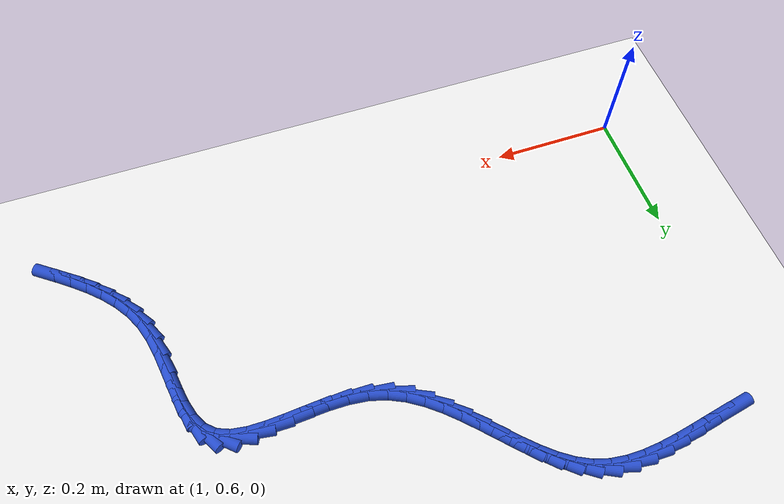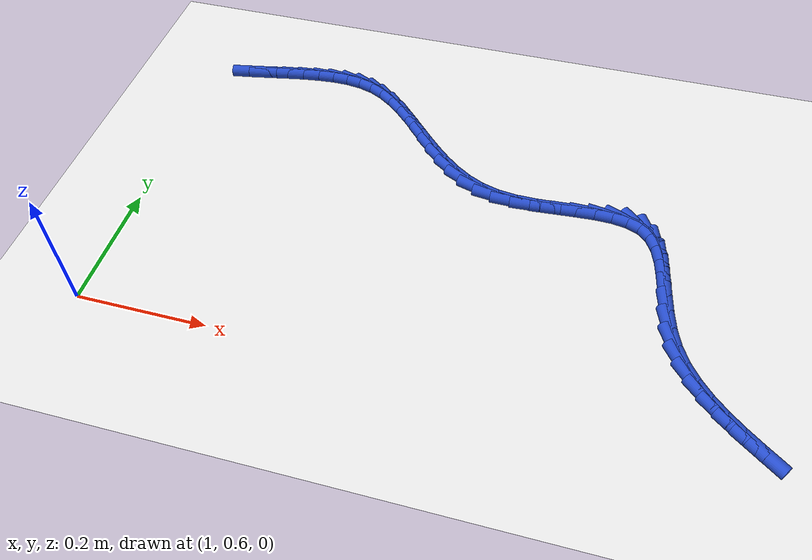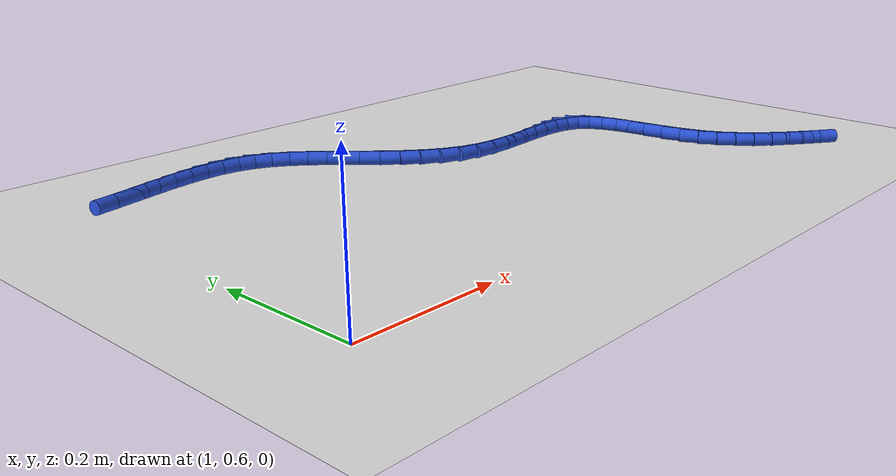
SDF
<sdf version="1.6">
 <world name="default">
  <model name="ground_plane">
   <static>1</static>
   <link name="link">
    <collision name="collision">
     <geometry><plane><normal>0 0 1</normal><size>100 100</size></plane></geometry>
     <surface><friction><ode><mu>100</mu><mu2>50</mu2></ode></friction></surface>
    </collision>
    <visual name="visual">
     <cast_shadows>0</cast_shadows>
     <geometry><plane><normal>0 0 1</normal><size>100 100</size></plane></geometry>
     <material>
      <script><uri>file://media/materials/scripts/gazebo.material</uri><name>Gazebo/WhiteGlow</name></script>
     </material>
    </visual>
   </link>
  </model>
  <model name="line">
   <link name="link_62">
    <pose>1.0673992737470597 1.1297134181565205 0.01 0 1.57 0.18237751880735595</pose>
    <collision name="collision">
     <geometry><cylinder><radius>0.01</radius><length>0.08</length></cylinder></geometry>
    </collision>
    <visual name="visual">
     <material>
      <script><name>Gazebo/Blue</name><uri>file://media/materials/scripts/gazebo.material</uri></script>
     </material>
     <geometry><cylinder><radius>0.01</radius><length>0.08</length></cylinder></geometry>
    </visual>
   </link>
   <link name="link_63">
    <pose>1.0968091401583424 1.1351373869472416 0.01 0 1.57 0.18851819379441911</pose>
    <collision name="collision">
     <geometry><cylinder><radius>0.01</radius><length>0.08</length></cylinder></geometry>
    </collision>
    <visual name="visual">
     <material>
      <script><name>Gazebo/Blue</name><uri>file://media/materials/scripts/gazebo.material</uri></script>
     </material>
     <geometry><cylinder><radius>0.01</radius><length>0.08</length></cylinder></geometry>
    </visual>
   </link>
   <link name="link_64">
    <pose>1.1260292529229787 1.1407121070224222 0.01 0 1.57 0.1741711699503826</pose>
    <collision name="collision">
     <geometry><cylinder><radius>0.01</radius><length>0.08</length></cylinder></geometry>
    </collision>
    <visual name="visual">
     <material>
      <script><name>Gazebo/Blue</name><uri>file://media/materials/scripts/gazebo.material</uri></script>
     </material>
     <geometry><cylinder><radius>0.01</radius><length>0.08</length></cylinder></geometry>
    </visual>
   </link>
   <link name="link_65">
    <pose>1.1548620190743997 1.1457853476105395 0.01 0 1.57 0.13787477575876508</pose>
    <collision name="collision">
     <geometry><cylinder><radius>0.01</radius><length>0.08</length></cylinder></geometry>
    </collision>
    <visual name="visual">
     <material>
      <script><name>Gazebo/Blue</name><uri>file://media/materials/scripts/gazebo.material</uri></script>
     </material>
     <geometry><cylinder><radius>0.01</radius><length>0.08</length></cylinder></geometry>
    </visual>
   </link>
   <link name="link_66">
    <pose>1.1831098456460356 1.1497048779400687 0.01 0 1.57 0.07680353953465939</pose>
    <collision name="collision">
     <geometry><cylinder><radius>0.01</radius><length>0.08</length></cylinder></geometry>
    </collision>
    <visual name="visual">
     <material>
      <script><name>Gazebo/Blue</name><uri>file://media/materials/scripts/gazebo.material</uri></script>
     </material>
     <geometry><cylinder><radius>0.01</radius><length>0.08</length></cylinder></geometry>
    </visual>
   </link>
   <link name="link_67">
    <pose>1.210575139671318 1.151818467239486 0.01 0 1.57 -0.013009660916273081</pose>
    <collision name="collision">
     <geometry><cylinder><radius>0.01</radius><length>0.08</length></cylinder></geometry>
    </collision>
    <visual name="visual">
     <material>
      <script><name>Gazebo/Blue</name><uri>file://media/materials/scripts/gazebo.material</uri></script>
     </material>
     <geometry><cylinder><radius>0.01</radius><length>0.08</length></cylinder></geometry>
    </visual>
   </link>
   <link name="link_68">
    <pose>1.2370603081836768 1.1514738847372676 0.01 0 1.57 -0.13568168527107302</pose>
    <collision name="collision">
     <geometry><cylinder><radius>0.01</radius><length>0.08</length></cylinder></geometry>
    </collision>
    <visual name="visual">
     <material>
      <script><name>Gazebo/Blue</name><uri>file://media/materials/scripts/gazebo.material</uri></script>
     </material>
     <geometry><cylinder><radius>0.01</radius><length>0.08</length></cylinder></geometry>
    </visual>
   </link>
   <link name="link_69">
    <pose>1.2623677582165436 1.1480188996618892 0.01 0 1.57 -0.29291108479055494</pose>
    <collision name="collision">
     <geometry><cylinder><radius>0.01</radius><length>0.08</length></cylinder></geometry>
    </collision>
    <visual name="visual">
     <material>
      <script><name>Gazebo/Blue</name><uri>file://media/materials/scripts/gazebo.material</uri></script>
     </material>
     <geometry><cylinder><radius>0.01</radius><length>0.08</length></cylinder></geometry>
    </visual>
   </link>
   <link name="link_70">
    <pose>1.286299904714121 1.1408013024525354 0.01 0 1.57 -0.46829487335958453</pose>
    <collision name="collision">
     <geometry><cylinder><radius>0.01</radius><length>0.08</length></cylinder></geometry>
    </collision>
    <visual name="visual">
     <material>
      <script><name>Gazebo/Blue</name><uri>file://media/materials/scripts/gazebo.material</uri></script>
     </material>
     <geometry><cylinder><radius>0.01</radius><length>0.08</length></cylinder></geometry>
    </visual>
   </link>
   <link name="link_71">
    <pose>1.308760384166092 1.1294402831694286 0.01 0 1.57 -0.6127080184047947</pose>
    <collision name="collision">
     <geometry><cylinder><radius>0.01</radius><length>0.08</length></cylinder></geometry>
    </collision>
    <visual name="visual">
     <material>
      <script><name>Gazebo/Blue</name><uri>file://media/materials/scripts/gazebo.material</uri></script>
     </material>
     <geometry><cylinder><radius>0.01</radius><length>0.08</length></cylinder></geometry>
    </visual>
   </link>
   <link name="link_72">
    <pose>1.3300070526935985 1.1145047809927742 0.01 0 1.57 -0.7163576402602352</pose>
    <collision name="collision">
     <geometry><cylinder><radius>0.01</radius><length>0.08</length></cylinder></geometry>
    </collision>
    <visual name="visual">
     <material>
      <script><name>Gazebo/Blue</name><uri>file://media/materials/scripts/gazebo.material</uri></script>
     </material>
     <geometry><cylinder><radius>0.01</radius><length>0.08</length></cylinder></geometry>
    </visual>
   </link>
   <link name="link_73">
    <pose>1.3503752054053015 1.0967713678924869 0.01 0 1.57 -0.7836250346150233</pose>
    <collision name="collision">
     <geometry><cylinder><radius>0.01</radius><length>0.08</length></cylinder></geometry>
    </collision>
    <visual name="visual">
     <material>
      <script><name>Gazebo/Blue</name><uri>file://media/materials/scripts/gazebo.material</uri></script>
     </material>
     <geometry><cylinder><radius>0.01</radius><length>0.08</length></cylinder></geometry>
    </visual>
   </link>
   <link name="link_74">
    <pose>1.370200137409862 1.0770166158384782 0.01 0 1.57 -0.8194232076903748</pose>
    <collision name="collision">
     <geometry><cylinder><radius>0.01</radius><length>0.08</length></cylinder></geometry>
    </collision>
    <visual name="visual">
     <material>
      <script><name>Gazebo/Blue</name><uri>file://media/materials/scripts/gazebo.material</uri></script>
     </material>
     <geometry><cylinder><radius>0.01</radius><length>0.08</length></cylinder></geometry>
    </visual>
   </link>
   <link name="link_75">
    <pose>1.3898171438159415 1.0560170968006626 0.01 0 1.57 -0.8271901402203647</pose>
    <collision name="collision">
     <geometry><cylinder><radius>0.01</radius><length>0.08</length></cylinder></geometry>
    </collision>
    <visual name="visual">
     <material>
      <script><name>Gazebo/Blue</name><uri>file://media/materials/scripts/gazebo.material</uri></script>
     </material>
     <geometry><cylinder><radius>0.01</radius><length>0.08</length></cylinder></geometry>
    </visual>
   </link>
   <link name="link_76">
    <pose>1.409561519732201 1.0345493827489527 0.01 0 1.57 -0.8084151264426336</pose>
    <collision name="collision">
     <geometry><cylinder><radius>0.01</radius><length>0.08</length></cylinder></geometry>
    </collision>
    <visual name="visual">
     <material>
      <script><name>Gazebo/Blue</name><uri>file://media/materials/scripts/gazebo.material</uri></script>
     </material>
     <geometry><cylinder><radius>0.01</radius><length>0.08</length></cylinder></geometry>
    </visual>
   </link>
   <link name="link_77">
    <pose>1.429768560267301 1.0133900456532612 0.01 0 1.57 -0.7627480466449872</pose>
    <collision name="collision">
     <geometry><cylinder><radius>0.01</radius><length>0.08</length></cylinder></geometry>
    </collision>
    <visual name="visual">
     <material>
      <script><name>Gazebo/Blue</name><uri>file://media/materials/scripts/gazebo.material</uri></script>
     </material>
     <geometry><cylinder><radius>0.01</radius><length>0.08</length></cylinder></geometry>
    </visual>
   </link>
   <link name="link_78">
    <pose>1.450773560529904 0.9933156574835023 0.01 0 1.57 -0.6884225469282975</pose>
    <collision name="collision">
     <geometry><cylinder><radius>0.01</radius><length>0.08</length></cylinder></geometry>
    </collision>
    <visual name="visual">
     <material>
      <script><name>Gazebo/Blue</name><uri>file://media/materials/scripts/gazebo.material</uri></script>
     </material>
     <geometry><cylinder><radius>0.01</radius><length>0.08</length></cylinder></geometry>
    </visual>
   </link>
   <link name="link_79">
    <pose>1.4729118156286694 0.9751027902095885 0.01 0 1.57 -0.5832042973728933</pose>
    <collision name="collision">
     <geometry><cylinder><radius>0.01</radius><length>0.08</length></cylinder></geometry>
    </collision>
    <visual name="visual">
     <material>
      <script><name>Gazebo/Blue</name><uri>file://media/materials/scripts/gazebo.material</uri></script>
     </material>
     <geometry><cylinder><radius>0.01</radius><length>0.08</length></cylinder></geometry>
    </visual>
   </link>
   <link name="link_80">
    <pose>1.4965186206722598 0.9595280158014334 0.01 0 1.57 -0.4463358019071614</pose>
    <collision name="collision">
     <geometry><cylinder><radius>0.01</radius><length>0.08</length></cylinder></geometry>
    </collision>
    <visual name="visual">
     <material>
      <script><name>Gazebo/Blue</name><uri>file://media/materials/scripts/gazebo.material</uri></script>
     </material>
     <geometry><cylinder><radius>0.01</radius><length>0.08</length></cylinder></geometry>
    </visual>
   </link>
   <link name="link_81">
    <pose>1.5219292707693357 0.9473679062289501 0.01 0 1.57 -0.28164683155677145</pose>
    <collision name="collision">
     <geometry><cylinder><radius>0.01</radius><length>0.08</length></cylinder></geometry>
    </collision>
    <visual name="visual">
     <material>
      <script><name>Gazebo/Blue</name><uri>file://media/materials/scripts/gazebo.material</uri></script>
     </material>
     <geometry><cylinder><radius>0.01</radius><length>0.08</length></cylinder></geometry>
    </visual>
   </link>
   <link name="link_82">
    <pose>1.5494778916648841 0.9393970385069371 0.01 0 1.57 -0.11972053929166095</pose>
    <collision name="collision">
     <geometry><cylinder><radius>0.01</radius><length>0.08</length></cylinder></geometry>
    </collision>
    <visual name="visual">
     <material>
      <script><name>Gazebo/Blue</name><uri>file://media/materials/scripts/gazebo.material</uri></script>
     </material>
     <geometry><cylinder><radius>0.01</radius><length>0.08</length></cylinder></geometry>
    </visual>
   </link>
   <link name="link_83">
    <pose>1.5791677140816625 0.9358254768886025 0.01 0 1.57 -0.009647175259623046</pose>
    <collision name="collision">
     <geometry><cylinder><radius>0.01</radius><length>0.08</length></cylinder></geometry>
    </collision>
    <visual name="visual">
     <material>
      <script><name>Gazebo/Blue</name><uri>file://media/materials/scripts/gazebo.material</uri></script>
     </material>
     <geometry><cylinder><radius>0.01</radius><length>0.08</length></cylinder></geometry>
    </visual>
   </link>
   <link name="link_84">
    <pose>1.6102180576811436 0.9355259194889007 0.01 0 1.57 0.05235213067997473</pose>
    <collision name="collision">
     <geometry><cylinder><radius>0.01</radius><length>0.08</length></cylinder></geometry>
    </collision>
    <visual name="visual">
     <material>
      <script><name>Gazebo/Blue</name><uri>file://media/materials/scripts/gazebo.material</uri></script>
     </material>
     <geometry><cylinder><radius>0.01</radius><length>0.08</length></cylinder></geometry>
    </visual>
   </link>
   <link name="link_85">
    <pose>1.6417347195618885 0.9371773929221991 0.01 0 1.57 0.07325627944548552</pose>
    <collision name="collision">
     <geometry><cylinder><radius>0.01</radius><length>0.08</length></cylinder></geometry>
    </collision>
    <visual name="visual">
     <material>
      <script><name>Gazebo/Blue</name><uri>file://media/materials/scripts/gazebo.material</uri></script>
     </material>
     <geometry><cylinder><radius>0.01</radius><length>0.08</length></cylinder></geometry>
    </visual>
   </link>
   <link name="link_86">
    <pose>1.672823496822459 0.9394589238028653 0.01 0 1.57 0.053385297132067286</pose>
    <collision name="collision">
     <geometry><cylinder><radius>0.01</radius><length>0.08</length></cylinder></geometry>
    </collision>
    <visual name="visual">
     <material>
      <script><name>Gazebo/Blue</name><uri>file://media/materials/scripts/gazebo.material</uri></script>
     </material>
     <geometry><cylinder><radius>0.01</radius><length>0.08</length></cylinder></geometry>
    </visual>
   </link>
   <link name="link_87">
    <pose>1.7025901865614161 0.9410495387452662 0.01 0 1.57 -0.015289852887501414</pose>
    <collision name="collision">
     <geometry><cylinder><radius>0.01</radius><length>0.08</length></cylinder></geometry>
    </collision>
    <visual name="visual">
     <material>
      <script><name>Gazebo/Blue</name><uri>file://media/materials/scripts/gazebo.material</uri></script>
     </material>
     <geometry><cylinder><radius>0.01</radius><length>0.08</length></cylinder></geometry>
    </visual>
   </link>
   <link name="link_88">
    <pose>1.7301405858773216 0.9406282643637701 0.01 0 1.57 -0.15241555387488723</pose>
    <collision name="collision">
     <geometry><cylinder><radius>0.01</radius><length>0.08</length></cylinder></geometry>
    </collision>
    <visual name="visual">
     <material>
      <script><name>Gazebo/Blue</name><uri>file://media/materials/scripts/gazebo.material</uri></script>
     </material>
     <geometry><cylinder><radius>0.01</radius><length>0.08</length></cylinder></geometry>
    </visual>
   </link>
   <link name="link_89">
    <pose>1.7545804918687375 0.9368741272727443 0.01 0 1.57 -0.39033400247926014</pose>
    <collision name="collision">
     <geometry><cylinder><radius>0.01</radius><length>0.08</length></cylinder></geometry>
    </collision>
    <visual name="visual">
     <material>
      <script><name>Gazebo/Blue</name><uri>file://media/materials/scripts/gazebo.material</uri></script>
     </material>
     <geometry><cylinder><radius>0.01</radius><length>0.08</length></cylinder></geometry>
    </visual>
   </link>
   <link name="link_90">
    <pose>1.7750157016342243 0.9284661540865559 0.01 0 1.57 -0.7435685703942402</pose>
    <collision name="collision">
     <geometry><cylinder><radius>0.01</radius><length>0.08</length></cylinder></geometry>
    </collision>
    <visual name="visual">
     <material>
      <script><name>Gazebo/Blue</name><uri>file://media/materials/scripts/gazebo.material</uri></script>
     </material>
     <geometry><cylinder><radius>0.01</radius><length>0.08</length></cylinder></geometry>
    </visual>
   </link>
   <link name="link_91">
    <pose>1.7905960442477131 0.9141376178875782 0.01 0 1.57 -1.0767229062294053</pose>
    <collision name="collision">
     <geometry><cylinder><radius>0.01</radius><length>0.08</length></cylinder></geometry>
    </collision>
    <visual name="visual">
     <material>
      <script><name>Gazebo/Blue</name><uri>file://media/materials/scripts/gazebo.material</uri></script>
     </material>
     <geometry><cylinder><radius>0.01</radius><length>0.08</length></cylinder></geometry>
    </visual>
   </link>
   <link name="link_92">
    <pose>1.8015015380642674 0.8938909632956825 0.01 0 1.57 -1.2798442043574045</pose>
    <collision name="collision">
     <geometry><cylinder><radius>0.01</radius><length>0.08</length></cylinder></geometry>
    </collision>
    <visual name="visual">
     <material>
      <script><name>Gazebo/Blue</name><uri>file://media/materials/scripts/gazebo.material</uri></script>
     </material>
     <geometry><cylinder><radius>0.01</radius><length>0.08</length></cylinder></geometry>
    </visual>
   </link>
   <link name="link_93">
    <pose>1.80895218162309 0.869009868654917 0.01 0 1.57 -1.386170810457762</pose>
    <collision name="collision">
     <geometry><cylinder><radius>0.01</radius><length>0.08</length></cylinder></geometry>
    </collision>
    <visual name="visual">
     <material>
      <script><name>Gazebo/Blue</name><uri>file://media/materials/scripts/gazebo.material</uri></script>
     </material>
     <geometry><cylinder><radius>0.01</radius><length>0.08</length></cylinder></geometry>
    </visual>
   </link>
   <link name="link_94">
    <pose>1.8142139636742793 0.8408346712823368 0.01 0 1.57 -1.4277684400964887</pose>
    <collision name="collision">
     <geometry><cylinder><radius>0.01</radius><length>0.08</length></cylinder></geometry>
    </collision>
    <visual name="visual">
     <material>
      <script><name>Gazebo/Blue</name><uri>file://media/materials/scripts/gazebo.material</uri></script>
     </material>
     <geometry><cylinder><radius>0.01</radius><length>0.08</length></cylinder></geometry>
    </visual>
   </link>
   <link name="link_95">
    <pose>1.8185528729679334 0.8107057084949976 0.01 0 1.57 -1.4196590514495484</pose>
    <collision name="collision">
     <geometry><cylinder><radius>0.01</radius><length>0.08</length></cylinder></geometry>
    </collision>
    <visual name="visual">
     <material>
      <script><name>Gazebo/Blue</name><uri>file://media/materials/scripts/gazebo.material</uri></script>
     </material>
     <geometry><cylinder><radius>0.01</radius><length>0.08</length></cylinder></geometry>
    </visual>
   </link>
   <link name="link_96">
    <pose>1.823234898254152 0.7799633176099547 0.01 0 1.57 -1.3641909362797517</pose>
    <collision name="collision">
     <geometry><cylinder><radius>0.01</radius><length>0.08</length></cylinder></geometry>
    </collision>
    <visual name="visual">
     <material>
      <script><name>Gazebo/Blue</name><uri>file://media/materials/scripts/gazebo.material</uri></script>
     </material>
     <geometry><cylinder><radius>0.01</radius><length>0.08</length></cylinder></geometry>
    </visual>
   </link>
   <link name="link_97">
    <pose>1.8295260282830323 0.7499478359442634 0.01 0 1.57 -1.254538766493779</pose>
    <collision name="collision">
     <geometry><cylinder><radius>0.01</radius><length>0.08</length></cylinder></geometry>
    </collision>
    <visual name="visual">
     <material>
      <script><name>Gazebo/Blue</name><uri>file://media/materials/scripts/gazebo.material</uri></script>
     </material>
     <geometry><cylinder><radius>0.01</radius><length>0.08</length></cylinder></geometry>
    </visual>
   </link>
   <link name="link_98">
    <pose>1.838676787498085 0.7219844804526907 0.01 0 1.57 -1.1096673865612792</pose>
    <collision name="collision">
     <geometry><cylinder><radius>0.01</radius><length>0.08</length></cylinder></geometry>
    </collision>
    <visual name="visual">
     <material>
      <script><name>Gazebo/Blue</name><uri>file://media/materials/scripts/gazebo.material</uri></script>
     </material>
     <geometry><cylinder><radius>0.01</radius><length>0.08</length></cylinder></geometry>
    </visual>
   </link>
   <link name="link_99">
    <pose>1.8512342335210425 0.6967106471946821 0.01 0 1.57 -0.9748360166422563</pose>
    <collision name="collision">
     <geometry><cylinder><radius>0.01</radius><length>0.08</length></cylinder></geometry>
    </collision>
    <visual name="visual">
     <material>
      <script><name>Gazebo/Blue</name><uri>file://media/materials/scripts/gazebo.material</uri></script>
     </material>
     <geometry><cylinder><radius>0.01</radius><length>0.08</length></cylinder></geometry>
    </visual>
   </link>
   <link name="link_100">
    <pose>1.8667675768469254 0.6738076335689346 0.01 0 1.57 -0.8601477752397568</pose>
    <collision name="collision">
     <geometry><cylinder><radius>0.01</radius><length>0.08</length></cylinder></geometry>
    </collision>
    <visual name="visual">
     <material>
      <script><name>Gazebo/Blue</name><uri>file://media/materials/scripts/gazebo.material</uri></script>
     </material>
     <geometry><cylinder><radius>0.01</radius><length>0.08</length></cylinder></geometry>
    </visual>
   </link>
   <link name="link_101">
    <pose>1.8847738150131332 0.6528861301173221 0.01 0 1.57 -0.7689432009738546</pose>
    <collision name="collision">
     <geometry><cylinder><radius>0.01</radius><length>0.08</length></cylinder></geometry>
    </collision>
    <visual name="visual">
     <material>
      <script><name>Gazebo/Blue</name><uri>file://media/materials/scripts/gazebo.material</uri></script>
     </material>
     <geometry><cylinder><radius>0.01</radius><length>0.08</length></cylinder></geometry>
    </visual>
   </link>
   <link name="link_102">
    <pose>1.9047499455570636 0.6335568273817173 0.01 0 1.57 -0.701776170406137</pose>
    <collision name="collision">
     <geometry><cylinder><radius>0.01</radius><length>0.08</length></cylinder></geometry>
    </collision>
    <visual name="visual">
     <material>
      <script><name>Gazebo/Blue</name><uri>file://media/materials/scripts/gazebo.material</uri></script>
     </material>
     <geometry><cylinder><radius>0.01</radius><length>0.08</length></cylinder></geometry>
    </visual>
   </link>
   <link name="link_103">
    <pose>1.9261929660161152 0.6154304159039933 0.01 0 1.57 -0.6578439171109495</pose>
    <collision name="collision">
     <geometry><cylinder><radius>0.01</radius><length>0.08</length></cylinder></geometry>
    </collision>
    <visual name="visual">
     <material>
      <script><name>Gazebo/Blue</name><uri>file://media/materials/scripts/gazebo.material</uri></script>
     </material>
     <geometry><cylinder><radius>0.01</radius><length>0.08</length></cylinder></geometry>
    </visual>
   </link>
   <link name="link_104">
    <pose>1.948599873927687 0.598117586226024 0.01 0 1.57 -0.6361199803016898</pose>
    <collision name="collision">
     <geometry><cylinder><radius>0.01</radius><length>0.08</length></cylinder></geometry>
    </collision>
    <visual name="visual">
     <material>
      <script><name>Gazebo/Blue</name><uri>file://media/materials/scripts/gazebo.material</uri></script>
     </material>
     <geometry><cylinder><radius>0.01</radius><length>0.08</length></cylinder></geometry>
    </visual>
   </link>
  </model>
 </world>
</sdf>
